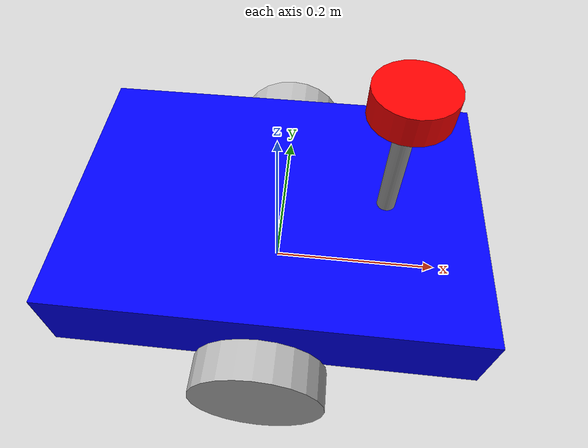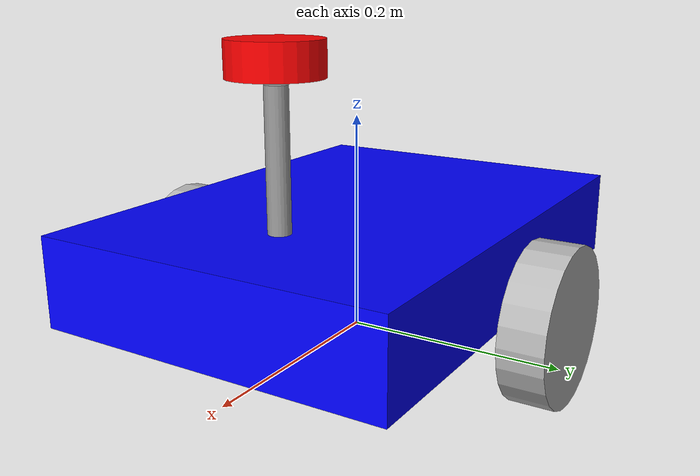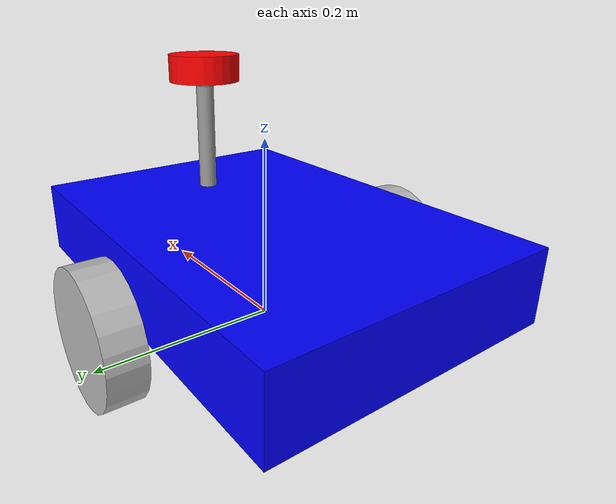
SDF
<?xml version="1.0"?>
<sdf version="1.8">

<model name="maze_bot">

  <!-- MAIN CHASSIS -->
  <link name="base_link">
    <pose>0 0 0.08 0 0 0</pose>

    <inertial>
      <mass>8.0</mass>
      <inertia>
        <ixx>0.18</ixx>
        <iyy>0.18</iyy>
        <izz>0.25</izz>
      </inertia>
    </inertial>

    <collision name="base_collision">
      <pose>0 0 0.02 0 0 0</pose>
      <geometry>
        <box>
          <size>0.45 0.32 0.08</size>
        </box>
      </geometry>
    </collision>

    <visual name="base_visual">
      <geometry>
        <box>
          <size>0.45 0.32 0.08</size>
        </box>
      </geometry>
      <material>
        <ambient>0 0 1 1</ambient>
        <diffuse>0 0 1 1</diffuse>
      </material>
    </visual>

    <!-- SENSOR POLE -->
    <visual name="pole">
      <pose>0.12 0 0.10 0 0 0</pose>
      <geometry>
        <cylinder>
          <radius>0.01</radius>
          <length>0.12</length>
        </cylinder>
      </geometry>
      <material>
        <ambient>0.6 0.6 0.6 1</ambient>
        <diffuse>0.6 0.6 0.6 1</diffuse>
      </material>
    </visual>

    <!-- LIDAR TOP -->
    <visual name="lidar_visual">
      <pose>0.12 0 0.18 0 0 0</pose>
      <geometry>
        <cylinder>
          <radius>0.04</radius>
          <length>0.03</length>
        </cylinder>
      </geometry>
      <material>
        <ambient>1 0 0 1</ambient>
        <diffuse>1 0 0 1</diffuse>
      </material>
    </visual>

    <!-- LIDAR SENSOR -->
    <sensor name="lidar_sensor" type="gpu_lidar">
      <pose>0.12 0 0.20 0 0 0</pose>
      <always_on>true</always_on>
      <update_rate>10</update_rate>
      <visualize>true</visualize>
      <topic>/scan</topic>

      <lidar>
        <scan>
          <horizontal>
            <samples>360</samples>
            <resolution>1</resolution>
            <min_angle>-3.14159</min_angle>
            <max_angle>3.14159</max_angle>
          </horizontal>
        </scan>
        <range>
          <min>0.10</min>
          <max>8.0</max>
          <resolution>0.01</resolution>
        </range>
      </lidar>
    </sensor>

  </link>

  <!-- LEFT DRIVE WHEEL -->
  <link name="left_wheel">
    <pose>0 0.19 0.04 -1.5708 0 0</pose>

    <inertial>
      <mass>1.2</mass>
      <inertia>
        <ixx>0.003</ixx>
        <iyy>0.003</iyy>
        <izz>0.003</izz>
      </inertia>
    </inertial>

    <collision name="left_collision">
      <geometry>
        <cylinder>
          <radius>0.07</radius>
          <length>0.04</length>
        </cylinder>
      </geometry>
    </collision>

    <visual name="left_visual">
      <geometry>
        <cylinder>
          <radius>0.07</radius>
          <length>0.04</length>
        </cylinder>
      </geometry>
    </visual>
  </link>

  <!-- RIGHT DRIVE WHEEL -->
  <link name="right_wheel">
    <pose>0 -0.19 0.04 -1.5708 0 0</pose>

    <inertial>
      <mass>1.2</mass>
      <inertia>
        <ixx>0.003</ixx>
        <iyy>0.003</iyy>
        <izz>0.003</izz>
      </inertia>
    </inertial>

    <collision name="right_collision">
      <geometry>
        <cylinder>
          <radius>0.07</radius>
          <length>0.04</length>
        </cylinder>
      </geometry>
    </collision>

    <visual name="right_visual">
      <geometry>
        <cylinder>
          <radius>0.07</radius>
          <length>0.04</length>
        </cylinder>
      </geometry>
    </visual>
  </link>

  <!-- REAR SUPPORT CASTER -->
  <link name="caster">
    <pose>-0.17 0 0.025 0 0 0</pose>

    <collision name="caster_collision">
      <geometry>
        <sphere>
          <radius>0.025</radius>
        </sphere>
      </geometry>
    </collision>

    <visual name="caster_visual">
      <geometry>
        <sphere>
          <radius>0.025</radius>
        </sphere>
      </geometry>
      <material>
        <ambient>0.2 0.2 0.2 1</ambient>
        <diffuse>0.2 0.2 0.2 1</diffuse>
      </material>
    </visual>
  </link>

  <!-- JOINTS -->
  <joint name="left_joint" type="revolute">
    <parent>base_link</parent>
    <child>left_wheel</child>
    <axis>
      <xyz>0 0 1</xyz>
      <limit>
        <lower>-1000</lower>
        <upper>1000</upper>
        <effort>1000000</effort>
        <velocity>100</velocity>
      </limit>
      <dynamics>
        <damping>0.2</damping>
        <friction>0.05</friction>
      </dynamics>
    </axis>
  </joint>

  <joint name="right_joint" type="revolute">
    <parent>base_link</parent>
    <child>right_wheel</child>
    <axis>
      <xyz>0 0 1</xyz>
      <limit>
        <lower>-1000</lower>
        <upper>1000</upper>
        <effort>1000000</effort>
        <velocity>100</velocity>
      </limit>
      <dynamics>
        <damping>0.2</damping>
        <friction>0.05</friction>
      </dynamics>
    </axis>
  </joint>

  <joint name="caster_joint" type="fixed">
    <parent>base_link</parent>
    <child>caster</child>
  </joint>

  <!-- DIFFERENTIAL DRIVE -->
  <plugin filename="gz-sim-diff-drive-system"
          name="gz::sim::systems::DiffDrive">

    <left_joint>left_joint</left_joint>
    <right_joint>right_joint</right_joint>

    <wheel_separation>0.38</wheel_separation>
    <wheel_radius>0.07</wheel_radius>

    <topic>/cmd_vel</topic>
    <odom_topic>/odom</odom_topic>

  </plugin>

</model>
</sdf>
